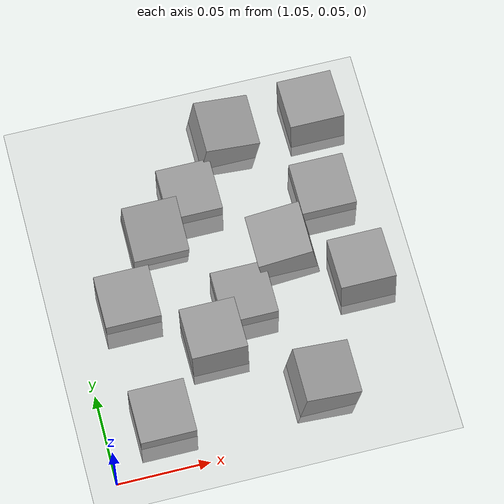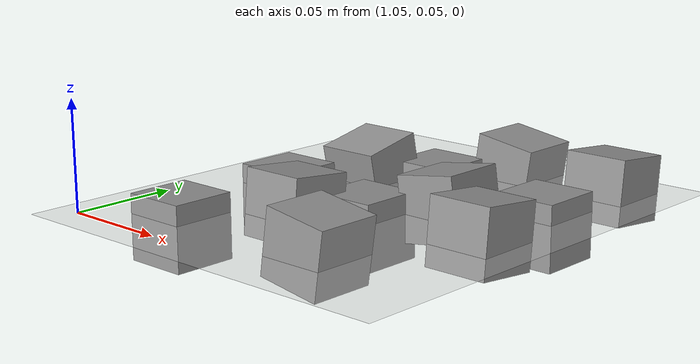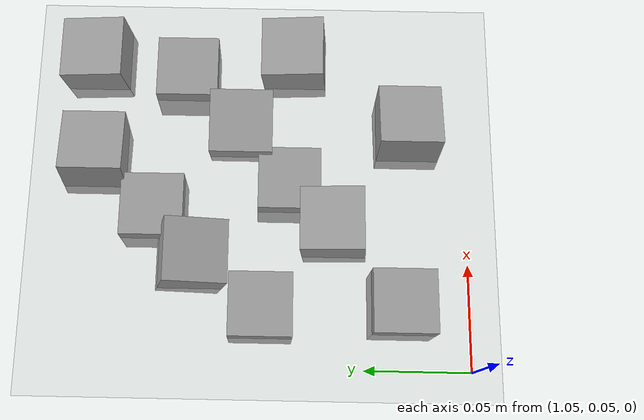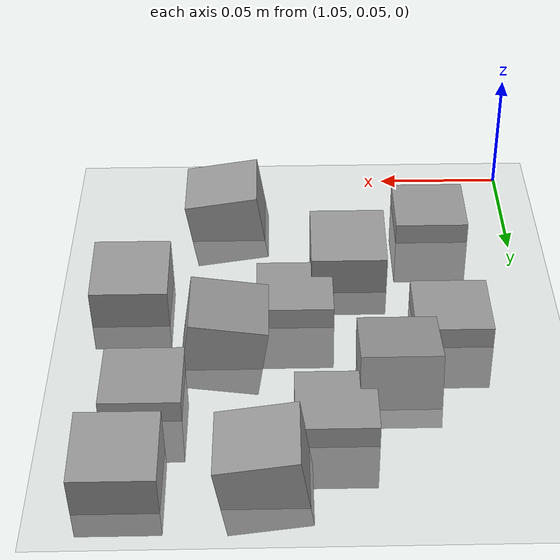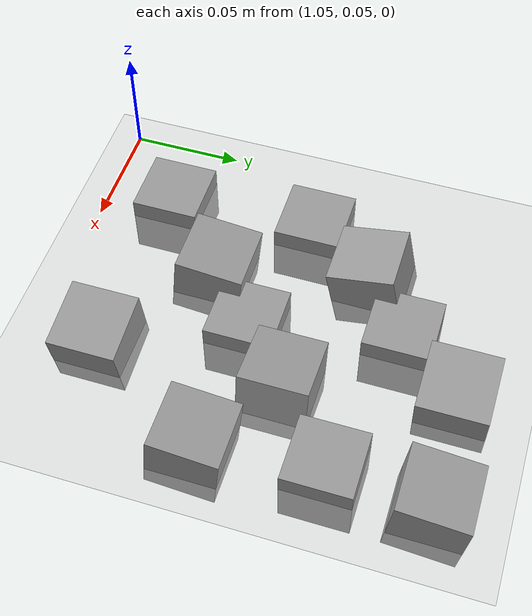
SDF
<sdf version="1.7">
 <world name="default">
  <model name="ground_plane">
   <static>1</static>
   <link name="link">
    <collision name="collision">
     <geometry><plane><normal>0 0 1</normal><size>100 100</size></plane></geometry>
     <surface><friction><ode><mu>100</mu><mu2>50</mu2></ode></friction></surface>
    </collision>
    <visual name="visual">
     <cast_shadows>0</cast_shadows>
     <geometry><plane><normal>0 0 1</normal><size>100 100</size></plane></geometry>
     <material>
      <script><uri>file://media/materials/scripts/gazebo.material</uri><name>Gazebo/Grey</name></script>
     </material>
    </visual>
   </link>
  </model>
  <model name="stone_road_11">
   <link name="link_0_clone_1">
    <inertial>
     <mass>1</mass>
     <inertia>
      <ixx>0.166667</ixx>
      <ixy>0</ixy>
      <ixz>0</ixz>
      <iyy>0.166667</iyy>
      <iyz>0</iyz>
      <izz>0.166667</izz>
     </inertia>
    </inertial>
    <pose>-0.022921 -0.129606 0.003778 0.2 -0 0</pose>
    <kinematic>1</kinematic>
    <visual name="visual">
     <geometry><box><size>0.03 0.03 0.03</size></box></geometry>
     <material>
      <lighting>1</lighting>
      <script><uri>file://media/materials/scripts/gazebo.material</uri><name>Gazebo/Grey</name></script>
      <shader type="pixel"><normal_map>__default__</normal_map></shader>
      <ambient>0.3 0.3 0.3 1</ambient>
      <diffuse>0.7 0.7 0.7 1</diffuse>
      <specular>0.01 0.01 0.01 1</specular>
      <emissive>0 0 0 1</emissive>
     </material>
    </visual>
    <collision name="collision">
     <geometry><box><size>0.03 0.03 0.03</size></box></geometry>
     <surface>
      <friction>
       <ode><mu>1</mu><mu2>1</mu2><fdir1>0 0 0</fdir1><slip1>0</slip1><slip2>0</slip2></ode>
       <torsional>
        <coefficient>1</coefficient>
        <patch_radius>0</patch_radius>
        <surface_radius>0</surface_radius>
        <use_patch_radius>1</use_patch_radius>
        <ode><slip>0</slip></ode>
       </torsional>
      </friction>
      <bounce><restitution_coefficient>0</restitution_coefficient><threshold>1e+06</threshold></bounce>
      <contact>
       <collide_without_contact>0</collide_without_contact>
       <collide_without_contact_bitmask>1</collide_without_contact_bitmask>
       <collide_bitmask>1</collide_bitmask>
       <ode>
        <soft_cfm>0</soft_cfm>
        <soft_erp>0.2</soft_erp>
        <kp>1e+13</kp>
        <kd>1</kd>
        <max_vel>0.01</max_vel>
        <min_depth>0</min_depth>
       </ode>
       <bullet>
        <split_impulse>1</split_impulse>
        <split_impulse_penetration_threshold>-0.01</split_impulse_penetration_threshold>
        <soft_cfm>0</soft_cfm>
        <soft_erp>0.2</soft_erp>
        <kp>1e+13</kp>
        <kd>1</kd>
       </bullet>
      </contact>
     </surface>
    </collision>
   </link>
   <link name="link_0_clone_2_clone_0">
    <inertial>
     <mass>1</mass>
     <inertia>
      <ixx>0.166667</ixx>
      <ixy>0</ixy>
      <ixz>0</ixz>
      <iyy>0.166667</iyy>
      <iyz>0</iyz>
      <izz>0.166667</izz>
     </inertia>
    </inertial>
    <pose>0.026852 -0.0813 0.003778 0 0.15 0</pose>
    <kinematic>1</kinematic>
    <visual name="visual">
     <geometry><box><size>0.03 0.03 0.03</size></box></geometry>
     <material>
      <lighting>1</lighting>
      <script><uri>file://media/materials/scripts/gazebo.material</uri><name>Gazebo/Grey</name></script>
      <shader type="pixel"><normal_map>__default__</normal_map></shader>
      <ambient>0.3 0.3 0.3 1</ambient>
      <diffuse>0.7 0.7 0.7 1</diffuse>
      <specular>0.01 0.01 0.01 1</specular>
      <emissive>0 0 0 1</emissive>
     </material>
    </visual>
    <collision name="collision">
     <geometry><box><size>0.03 0.03 0.03</size></box></geometry>
     <surface>
      <friction>
       <ode><mu>1</mu><mu2>1</mu2><fdir1>0 0 0</fdir1><slip1>0</slip1><slip2>0</slip2></ode>
       <torsional>
        <coefficient>1</coefficient>
        <patch_radius>0</patch_radius>
        <surface_radius>0</surface_radius>
        <use_patch_radius>1</use_patch_radius>
        <ode><slip>0</slip></ode>
       </torsional>
      </friction>
      <bounce><restitution_coefficient>0</restitution_coefficient><threshold>1e+06</threshold></bounce>
      <contact>
       <collide_without_contact>0</collide_without_contact>
       <collide_without_contact_bitmask>1</collide_without_contact_bitmask>
       <collide_bitmask>1</collide_bitmask>
       <ode>
        <soft_cfm>0</soft_cfm>
        <soft_erp>0.2</soft_erp>
        <kp>1e+13</kp>
        <kd>1</kd>
        <max_vel>0.01</max_vel>
        <min_depth>0</min_depth>
       </ode>
       <bullet>
        <split_impulse>1</split_impulse>
        <split_impulse_penetration_threshold>-0.01</split_impulse_penetration_threshold>
        <soft_cfm>0</soft_cfm>
        <soft_erp>0.2</soft_erp>
        <kp>1e+13</kp>
        <kd>1</kd>
       </bullet>
      </contact>
     </surface>
    </collision>
   </link>
   <link name="link_0_clone_2_clone_2_clone_13_clone_clone_10">
    <inertial>
     <mass>1</mass>
     <inertia>
      <ixx>0.166667</ixx>
      <ixy>0</ixy>
      <ixz>0</ixz>
      <iyy>0.166667</iyy>
      <iyz>0</iyz>
      <izz>0.166667</izz>
     </inertia>
    </inertial>
    <pose>-0.006825 -0.196489 0.003778 -0.1 0 0</pose>
    <kinematic>1</kinematic>
    <visual name="visual">
     <geometry><box><size>0.03 0.03 0.03</size></box></geometry>
     <material>
      <lighting>1</lighting>
      <script><uri>file://media/materials/scripts/gazebo.material</uri><name>Gazebo/Grey</name></script>
      <shader type="pixel"><normal_map>__default__</normal_map></shader>
      <ambient>0.3 0.3 0.3 1</ambient>
      <diffuse>0.7 0.7 0.7 1</diffuse>
      <specular>0.01 0.01 0.01 1</specular>
      <emissive>0 0 0 1</emissive>
     </material>
    </visual>
    <collision name="collision">
     <geometry><box><size>0.03 0.03 0.03</size></box></geometry>
     <surface>
      <friction>
       <ode><mu>1</mu><mu2>1</mu2><fdir1>0 0 0</fdir1><slip1>0</slip1><slip2>0</slip2></ode>
       <torsional>
        <coefficient>1</coefficient>
        <patch_radius>0</patch_radius>
        <surface_radius>0</surface_radius>
        <use_patch_radius>1</use_patch_radius>
        <ode><slip>0</slip></ode>
       </torsional>
      </friction>
      <bounce><restitution_coefficient>0</restitution_coefficient><threshold>1e+06</threshold></bounce>
      <contact>
       <collide_without_contact>0</collide_without_contact>
       <collide_without_contact_bitmask>1</collide_without_contact_bitmask>
       <collide_bitmask>1</collide_bitmask>
       <ode>
        <soft_cfm>0</soft_cfm>
        <soft_erp>0.2</soft_erp>
        <kp>1e+13</kp>
        <kd>1</kd>
        <max_vel>0.01</max_vel>
        <min_depth>0</min_depth>
       </ode>
       <bullet>
        <split_impulse>1</split_impulse>
        <split_impulse_penetration_threshold>-0.01</split_impulse_penetration_threshold>
        <soft_cfm>0</soft_cfm>
        <soft_erp>0.2</soft_erp>
        <kp>1e+13</kp>
        <kd>1</kd>
       </bullet>
      </contact>
     </surface>
    </collision>
   </link>
   <link name="link_0_clone_2_clone_2_clone_13_clone_clone_12">
    <inertial>
     <mass>1</mass>
     <inertia>
      <ixx>0.166667</ixx>
      <ixy>0</ixy>
      <ixz>0</ixz>
      <iyy>0.166667</iyy>
      <iyz>0</iyz>
      <izz>0.166667</izz>
     </inertia>
    </inertial>
    <pose>0.078701 -0.177208 0.003778 -0.1 0 0</pose>
    <kinematic>1</kinematic>
    <visual name="visual">
     <geometry><box><size>0.03 0.03 0.03</size></box></geometry>
     <material>
      <lighting>1</lighting>
      <script><uri>file://media/materials/scripts/gazebo.material</uri><name>Gazebo/Grey</name></script>
      <shader type="pixel"><normal_map>__default__</normal_map></shader>
      <ambient>0.3 0.3 0.3 1</ambient>
      <diffuse>0.7 0.7 0.7 1</diffuse>
      <specular>0.01 0.01 0.01 1</specular>
      <emissive>0 0 0 1</emissive>
     </material>
    </visual>
    <collision name="collision">
     <geometry><box><size>0.03 0.03 0.03</size></box></geometry>
     <surface>
      <friction>
       <ode><mu>1</mu><mu2>1</mu2><fdir1>0 0 0</fdir1><slip1>0</slip1><slip2>0</slip2></ode>
       <torsional>
        <coefficient>1</coefficient>
        <patch_radius>0</patch_radius>
        <surface_radius>0</surface_radius>
        <use_patch_radius>1</use_patch_radius>
        <ode><slip>0</slip></ode>
       </torsional>
      </friction>
      <bounce><restitution_coefficient>0</restitution_coefficient><threshold>1e+06</threshold></bounce>
      <contact>
       <collide_without_contact>0</collide_without_contact>
       <collide_without_contact_bitmask>1</collide_without_contact_bitmask>
       <collide_bitmask>1</collide_bitmask>
       <ode>
        <soft_cfm>0</soft_cfm>
        <soft_erp>0.2</soft_erp>
        <kp>1e+13</kp>
        <kd>1</kd>
        <max_vel>0.01</max_vel>
        <min_depth>0</min_depth>
       </ode>
       <bullet>
        <split_impulse>1</split_impulse>
        <split_impulse_penetration_threshold>-0.01</split_impulse_penetration_threshold>
        <soft_cfm>0</soft_cfm>
        <soft_erp>0.2</soft_erp>
        <kp>1e+13</kp>
        <kd>1</kd>
       </bullet>
      </contact>
     </surface>
    </collision>
   </link>
   <link name="link_0_clone_2_clone_2_clone_13_clone_clone_16_clone_16">
    <inertial>
     <mass>1</mass>
     <inertia>
      <ixx>0.166667</ixx>
      <ixy>0</ixy>
      <ixz>0</ixz>
      <iyy>0.166667</iyy>
      <iyz>0</iyz>
      <izz>0.166667</izz>
     </inertia>
    </inertial>
    <pose>0.071475 -0.124425 -0.006222 0 -0 0</pose>
    <kinematic>1</kinematic>
    <visual name="visual">
     <geometry><box><size>0.03 0.03 0.03</size></box></geometry>
     <material>
      <lighting>1</lighting>
      <script><uri>file://media/materials/scripts/gazebo.material</uri><name>Gazebo/Grey</name></script>
      <shader type="pixel"><normal_map>__default__</normal_map></shader>
      <ambient>0.3 0.3 0.3 1</ambient>
      <diffuse>0.7 0.7 0.7 1</diffuse>
      <specular>0.01 0.01 0.01 1</specular>
      <emissive>0 0 0 1</emissive>
     </material>
    </visual>
    <collision name="collision">
     <geometry><box><size>0.03 0.03 0.03</size></box></geometry>
     <surface>
      <friction>
       <ode><mu>1</mu><mu2>1</mu2><fdir1>0 0 0</fdir1><slip1>0</slip1><slip2>0</slip2></ode>
       <torsional>
        <coefficient>1</coefficient>
        <patch_radius>0</patch_radius>
        <surface_radius>0</surface_radius>
        <use_patch_radius>1</use_patch_radius>
        <ode><slip>0</slip></ode>
       </torsional>
      </friction>
      <bounce><restitution_coefficient>0</restitution_coefficient><threshold>1e+06</threshold></bounce>
      <contact>
       <collide_without_contact>0</collide_without_contact>
       <collide_without_contact_bitmask>1</collide_without_contact_bitmask>
       <collide_bitmask>1</collide_bitmask>
       <ode>
        <soft_cfm>0</soft_cfm>
        <soft_erp>0.2</soft_erp>
        <kp>1e+13</kp>
        <kd>1</kd>
        <max_vel>0.01</max_vel>
        <min_depth>0</min_depth>
       </ode>
       <bullet>
        <split_impulse>1</split_impulse>
        <split_impulse_penetration_threshold>-0.01</split_impulse_penetration_threshold>
        <soft_cfm>0</soft_cfm>
        <soft_erp>0.2</soft_erp>
        <kp>1e+13</kp>
        <kd>1</kd>
       </bullet>
      </contact>
     </surface>
    </collision>
   </link>
   <link name="link_0_clone_2_clone_2_clone_13_clone_clone_16_clone_17">
    <inertial>
     <mass>1</mass>
     <inertia>
      <ixx>0.166667</ixx>
      <ixy>0</ixy>
      <ixz>0</ixz>
      <iyy>0.166667</iyy>
      <iyz>0</iyz>
      <izz>0.166667</izz>
     </inertia>
    </inertial>
    <pose>0.014877 -0.175392 -0.006222 0 -0 0</pose>
    <kinematic>1</kinematic>
    <visual name="visual">
     <geometry><box><size>0.03 0.03 0.03</size></box></geometry>
     <material>
      <lighting>1</lighting>
      <script><uri>file://media/materials/scripts/gazebo.material</uri><name>Gazebo/Grey</name></script>
      <shader type="pixel"><normal_map>__default__</normal_map></shader>
      <ambient>0.3 0.3 0.3 1</ambient>
      <diffuse>0.7 0.7 0.7 1</diffuse>
      <specular>0.01 0.01 0.01 1</specular>
      <emissive>0 0 0 1</emissive>
     </material>
    </visual>
    <collision name="collision">
     <geometry><box><size>0.03 0.03 0.03</size></box></geometry>
     <surface>
      <friction>
       <ode><mu>1</mu><mu2>1</mu2><fdir1>0 0 0</fdir1><slip1>0</slip1><slip2>0</slip2></ode>
       <torsional>
        <coefficient>1</coefficient>
        <patch_radius>0</patch_radius>
        <surface_radius>0</surface_radius>
        <use_patch_radius>1</use_patch_radius>
        <ode><slip>0</slip></ode>
       </torsional>
      </friction>
      <bounce><restitution_coefficient>0</restitution_coefficient><threshold>1e+06</threshold></bounce>
      <contact>
       <collide_without_contact>0</collide_without_contact>
       <collide_without_contact_bitmask>1</collide_without_contact_bitmask>
       <collide_bitmask>1</collide_bitmask>
       <ode>
        <soft_cfm>0</soft_cfm>
        <soft_erp>0.2</soft_erp>
        <kp>1e+13</kp>
        <kd>1</kd>
        <max_vel>0.01</max_vel>
        <min_depth>0</min_depth>
       </ode>
       <bullet>
        <split_impulse>1</split_impulse>
        <split_impulse_penetration_threshold>-0.01</split_impulse_penetration_threshold>
        <soft_cfm>0</soft_cfm>
        <soft_erp>0.2</soft_erp>
        <kp>1e+13</kp>
        <kd>1</kd>
       </bullet>
      </contact>
     </surface>
    </collision>
   </link>
   <link name="link_0_clone_2_clone_2_clone_13_clone_clone_16_clone_29">
    <inertial>
     <mass>1</mass>
     <inertia>
      <ixx>0.166667</ixx>
      <ixy>0</ixy>
      <ixz>0</ixz>
      <iyy>0.166667</iyy>
      <iyz>0</iyz>
      <izz>0.166667</izz>
     </inertia>
    </inertial>
    <pose>-0.042964 -0.229632 -0.006222 0 -0 0</pose>
    <kinematic>1</kinematic>
    <visual name="visual">
     <geometry><box><size>0.03 0.03 0.03</size></box></geometry>
     <material>
      <lighting>1</lighting>
      <script><uri>file://media/materials/scripts/gazebo.material</uri><name>Gazebo/Grey</name></script>
      <shader type="pixel"><normal_map>__default__</normal_map></shader>
      <ambient>0.3 0.3 0.3 1</ambient>
      <diffuse>0.7 0.7 0.7 1</diffuse>
      <specular>0.01 0.01 0.01 1</specular>
      <emissive>0 0 0 1</emissive>
     </material>
    </visual>
    <collision name="collision">
     <geometry><box><size>0.03 0.03 0.03</size></box></geometry>
     <surface>
      <friction>
       <ode><mu>1</mu><mu2>1</mu2><fdir1>0 0 0</fdir1><slip1>0</slip1><slip2>0</slip2></ode>
       <torsional>
        <coefficient>1</coefficient>
        <patch_radius>0</patch_radius>
        <surface_radius>0</surface_radius>
        <use_patch_radius>1</use_patch_radius>
        <ode><slip>0</slip></ode>
       </torsional>
      </friction>
      <bounce><restitution_coefficient>0</restitution_coefficient><threshold>1e+06</threshold></bounce>
      <contact>
       <collide_without_contact>0</collide_without_contact>
       <collide_without_contact_bitmask>1</collide_without_contact_bitmask>
       <collide_bitmask>1</collide_bitmask>
       <ode>
        <soft_cfm>0</soft_cfm>
        <soft_erp>0.2</soft_erp>
        <kp>1e+13</kp>
        <kd>1</kd>
        <max_vel>0.01</max_vel>
        <min_depth>0</min_depth>
       </ode>
       <bullet>
        <split_impulse>1</split_impulse>
        <split_impulse_penetration_threshold>-0.01</split_impulse_penetration_threshold>
        <soft_cfm>0</soft_cfm>
        <soft_erp>0.2</soft_erp>
        <kp>1e+13</kp>
        <kd>1</kd>
       </bullet>
      </contact>
     </surface>
    </collision>
   </link>
   <link name="link_0_clone_2_clone_2_clone_13_clone_clone_16_clone_7">
    <inertial>
     <mass>1</mass>
     <inertia>
      <ixx>0.166667</ixx>
      <ixy>0</ixy>
      <ixz>0</ixz>
      <iyy>0.166667</iyy>
      <iyz>0</iyz>
      <izz>0.166667</izz>
     </inertia>
    </inertial>
    <pose>0.000883 -0.109959 -0.006222 0 -0 0</pose>
    <kinematic>1</kinematic>
    <visual name="visual">
     <geometry><box><size>0.03 0.03 0.03</size></box></geometry>
     <material>
      <lighting>1</lighting>
      <script><uri>file://media/materials/scripts/gazebo.material</uri><name>Gazebo/Grey</name></script>
      <shader type="pixel"><normal_map>__default__</normal_map></shader>
      <ambient>0.3 0.3 0.3 1</ambient>
      <diffuse>0.7 0.7 0.7 1</diffuse>
      <specular>0.01 0.01 0.01 1</specular>
      <emissive>0 0 0 1</emissive>
     </material>
    </visual>
    <collision name="collision">
     <geometry><box><size>0.03 0.03 0.03</size></box></geometry>
     <surface>
      <friction>
       <ode><mu>1</mu><mu2>1</mu2><fdir1>0 0 0</fdir1><slip1>0</slip1><slip2>0</slip2></ode>
       <torsional>
        <coefficient>1</coefficient>
        <patch_radius>0</patch_radius>
        <surface_radius>0</surface_radius>
        <use_patch_radius>1</use_patch_radius>
        <ode><slip>0</slip></ode>
       </torsional>
      </friction>
      <bounce><restitution_coefficient>0</restitution_coefficient><threshold>1e+06</threshold></bounce>
      <contact>
       <collide_without_contact>0</collide_without_contact>
       <collide_without_contact_bitmask>1</collide_without_contact_bitmask>
       <collide_bitmask>1</collide_bitmask>
       <ode>
        <soft_cfm>0</soft_cfm>
        <soft_erp>0.2</soft_erp>
        <kp>1e+13</kp>
        <kd>1</kd>
        <max_vel>0.01</max_vel>
        <min_depth>0</min_depth>
       </ode>
       <bullet>
        <split_impulse>1</split_impulse>
        <split_impulse_penetration_threshold>-0.01</split_impulse_penetration_threshold>
        <soft_cfm>0</soft_cfm>
        <soft_erp>0.2</soft_erp>
        <kp>1e+13</kp>
        <kd>1</kd>
       </bullet>
      </contact>
     </surface>
    </collision>
   </link>
   <link name="link_0_clone_2_clone_2_clone_13_clone_clone_16_clone_8">
    <inertial>
     <mass>1</mass>
     <inertia>
      <ixx>0.166667</ixx>
      <ixy>0</ixy>
      <ixz>0</ixz>
      <iyy>0.166667</iyy>
      <iyz>0</iyz>
      <izz>0.166667</izz>
     </inertia>
    </inertial>
    <pose>-0.045715 -0.162471 -0.006222 0 -0 0</pose>
    <kinematic>1</kinematic>
    <visual name="visual">
     <geometry><box><size>0.03 0.03 0.03</size></box></geometry>
     <material>
      <lighting>1</lighting>
      <script><uri>file://media/materials/scripts/gazebo.material</uri><name>Gazebo/Grey</name></script>
      <shader type="pixel"><normal_map>__default__</normal_map></shader>
      <ambient>0.3 0.3 0.3 1</ambient>
      <diffuse>0.7 0.7 0.7 1</diffuse>
      <specular>0.01 0.01 0.01 1</specular>
      <emissive>0 0 0 1</emissive>
     </material>
    </visual>
    <collision name="collision">
     <geometry><box><size>0.03 0.03 0.03</size></box></geometry>
     <surface>
      <friction>
       <ode><mu>1</mu><mu2>1</mu2><fdir1>0 0 0</fdir1><slip1>0</slip1><slip2>0</slip2></ode>
       <torsional>
        <coefficient>1</coefficient>
        <patch_radius>0</patch_radius>
        <surface_radius>0</surface_radius>
        <use_patch_radius>1</use_patch_radius>
        <ode><slip>0</slip></ode>
       </torsional>
      </friction>
      <bounce><restitution_coefficient>0</restitution_coefficient><threshold>1e+06</threshold></bounce>
      <contact>
       <collide_without_contact>0</collide_without_contact>
       <collide_without_contact_bitmask>1</collide_without_contact_bitmask>
       <collide_bitmask>1</collide_bitmask>
       <ode>
        <soft_cfm>0</soft_cfm>
        <soft_erp>0.2</soft_erp>
        <kp>1e+13</kp>
        <kd>1</kd>
        <max_vel>0.01</max_vel>
        <min_depth>0</min_depth>
       </ode>
       <bullet>
        <split_impulse>1</split_impulse>
        <split_impulse_penetration_threshold>-0.01</split_impulse_penetration_threshold>
        <soft_cfm>0</soft_cfm>
        <soft_erp>0.2</soft_erp>
        <kp>1e+13</kp>
        <kd>1</kd>
       </bullet>
      </contact>
     </surface>
    </collision>
   </link>
   <link name="link_0_clone_2_clone_2_clone_13_clone_clone_5">
    <inertial>
     <mass>1</mass>
     <inertia>
      <ixx>0.166667</ixx>
      <ixy>0</ixy>
      <ixz>0</ixz>
      <iyy>0.166667</iyy>
      <iyz>0</iyz>
      <izz>0.166667</izz>
     </inertia>
    </inertial>
    <pose>0.076743 -0.079785 0.003778 -0.1 0 0</pose>
    <kinematic>1</kinematic>
    <visual name="visual">
     <geometry><box><size>0.03 0.03 0.03</size></box></geometry>
     <material>
      <lighting>1</lighting>
      <script><uri>file://media/materials/scripts/gazebo.material</uri><name>Gazebo/Grey</name></script>
      <shader type="pixel"><normal_map>__default__</normal_map></shader>
      <ambient>0.3 0.3 0.3 1</ambient>
      <diffuse>0.7 0.7 0.7 1</diffuse>
      <specular>0.01 0.01 0.01 1</specular>
      <emissive>0 0 0 1</emissive>
     </material>
    </visual>
    <collision name="collision">
     <geometry><box><size>0.03 0.03 0.03</size></box></geometry>
     <surface>
      <friction>
       <ode><mu>1</mu><mu2>1</mu2><fdir1>0 0 0</fdir1><slip1>0</slip1><slip2>0</slip2></ode>
       <torsional>
        <coefficient>1</coefficient>
        <patch_radius>0</patch_radius>
        <surface_radius>0</surface_radius>
        <use_patch_radius>1</use_patch_radius>
        <ode><slip>0</slip></ode>
       </torsional>
      </friction>
      <bounce><restitution_coefficient>0</restitution_coefficient><threshold>1e+06</threshold></bounce>
      <contact>
       <collide_without_contact>0</collide_without_contact>
       <collide_without_contact_bitmask>1</collide_without_contact_bitmask>
       <collide_bitmask>1</collide_bitmask>
       <ode>
        <soft_cfm>0</soft_cfm>
        <soft_erp>0.2</soft_erp>
        <kp>1e+13</kp>
        <kd>1</kd>
        <max_vel>0.01</max_vel>
        <min_depth>0</min_depth>
       </ode>
       <bullet>
        <split_impulse>1</split_impulse>
        <split_impulse_penetration_threshold>-0.01</split_impulse_penetration_threshold>
        <soft_cfm>0</soft_cfm>
        <soft_erp>0.2</soft_erp>
        <kp>1e+13</kp>
        <kd>1</kd>
       </bullet>
      </contact>
     </surface>
    </collision>
   </link>
   <link name="link_0_clone_2_clone_2_clone_4">
    <inertial>
     <mass>1</mass>
     <inertia>
      <ixx>0.166667</ixx>
      <ixy>0</ixy>
      <ixz>0</ixz>
      <iyy>0.166667</iyy>
      <iyz>0</iyz>
      <izz>0.166667</izz>
     </inertia>
    </inertial>
    <pose>0.042048 -0.151731 0.003778 0 -0.15 0</pose>
    <kinematic>1</kinematic>
    <visual name="visual">
     <geometry><box><size>0.03 0.03 0.03</size></box></geometry>
     <material>
      <lighting>1</lighting>
      <script><uri>file://media/materials/scripts/gazebo.material</uri><name>Gazebo/Grey</name></script>
      <shader type="pixel"><normal_map>__default__</normal_map></shader>
      <ambient>0.3 0.3 0.3 1</ambient>
      <diffuse>0.7 0.7 0.7 1</diffuse>
      <specular>0.01 0.01 0.01 1</specular>
      <emissive>0 0 0 1</emissive>
     </material>
    </visual>
    <collision name="collision">
     <geometry><box><size>0.03 0.03 0.03</size></box></geometry>
     <surface>
      <friction>
       <ode><mu>1</mu><mu2>1</mu2><fdir1>0 0 0</fdir1><slip1>0</slip1><slip2>0</slip2></ode>
       <torsional>
        <coefficient>1</coefficient>
        <patch_radius>0</patch_radius>
        <surface_radius>0</surface_radius>
        <use_patch_radius>1</use_patch_radius>
        <ode><slip>0</slip></ode>
       </torsional>
      </friction>
      <bounce><restitution_coefficient>0</restitution_coefficient><threshold>1e+06</threshold></bounce>
      <contact>
       <collide_without_contact>0</collide_without_contact>
       <collide_without_contact_bitmask>1</collide_without_contact_bitmask>
       <collide_bitmask>1</collide_bitmask>
       <ode>
        <soft_cfm>0</soft_cfm>
        <soft_erp>0.2</soft_erp>
        <kp>1e+13</kp>
        <kd>1</kd>
        <max_vel>0.01</max_vel>
        <min_depth>0</min_depth>
       </ode>
       <bullet>
        <split_impulse>1</split_impulse>
        <split_impulse_penetration_threshold>-0.01</split_impulse_penetration_threshold>
        <soft_cfm>0</soft_cfm>
        <soft_erp>0.2</soft_erp>
        <kp>1e+13</kp>
        <kd>1</kd>
       </bullet>
      </contact>
     </surface>
    </collision>
   </link>
   <link name="link_0_clone_2_clone_7">
    <inertial>
     <mass>1</mass>
     <inertia>
      <ixx>0.166667</ixx>
      <ixy>0</ixy>
      <ixz>0</ixz>
      <iyy>0.166667</iyy>
      <iyz>0</iyz>
      <izz>0.166667</izz>
     </inertia>
    </inertial>
    <pose>0.04255 -0.232691 0.003778 0 0.15 0</pose>
    <kinematic>1</kinematic>
    <visual name="visual">
     <geometry><box><size>0.03 0.03 0.03</size></box></geometry>
     <material>
      <lighting>1</lighting>
      <script><uri>file://media/materials/scripts/gazebo.material</uri><name>Gazebo/Grey</name></script>
      <shader type="pixel"><normal_map>__default__</normal_map></shader>
      <ambient>0.3 0.3 0.3 1</ambient>
      <diffuse>0.7 0.7 0.7 1</diffuse>
      <specular>0.01 0.01 0.01 1</specular>
      <emissive>0 0 0 1</emissive>
     </material>
    </visual>
    <collision name="collision">
     <geometry><box><size>0.03 0.03 0.03</size></box></geometry>
     <surface>
      <friction>
       <ode><mu>1</mu><mu2>1</mu2><fdir1>0 0 0</fdir1><slip1>0</slip1><slip2>0</slip2></ode>
       <torsional>
        <coefficient>1</coefficient>
        <patch_radius>0</patch_radius>
        <surface_radius>0</surface_radius>
        <use_patch_radius>1</use_patch_radius>
        <ode><slip>0</slip></ode>
       </torsional>
      </friction>
      <bounce><restitution_coefficient>0</restitution_coefficient><threshold>1e+06</threshold></bounce>
      <contact>
       <collide_without_contact>0</collide_without_contact>
       <collide_without_contact_bitmask>1</collide_without_contact_bitmask>
       <collide_bitmask>1</collide_bitmask>
       <ode>
        <soft_cfm>0</soft_cfm>
        <soft_erp>0.2</soft_erp>
        <kp>1e+13</kp>
        <kd>1</kd>
        <max_vel>0.01</max_vel>
        <min_depth>0</min_depth>
       </ode>
       <bullet>
        <split_impulse>1</split_impulse>
        <split_impulse_penetration_threshold>-0.01</split_impulse_penetration_threshold>
        <soft_cfm>0</soft_cfm>
        <soft_erp>0.2</soft_erp>
        <kp>1e+13</kp>
        <kd>1</kd>
       </bullet>
      </contact>
     </surface>
    </collision>
   </link>
   <static>0</static>
   <pose>1.12471 0.310289 -0 0 -0 0</pose>
  </model>
 </world>
</sdf>
